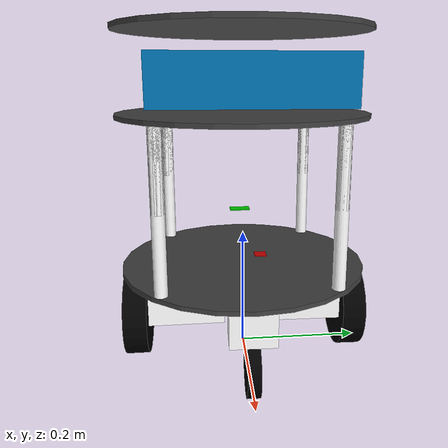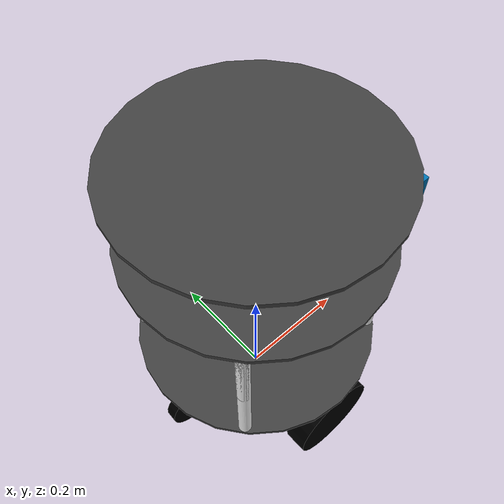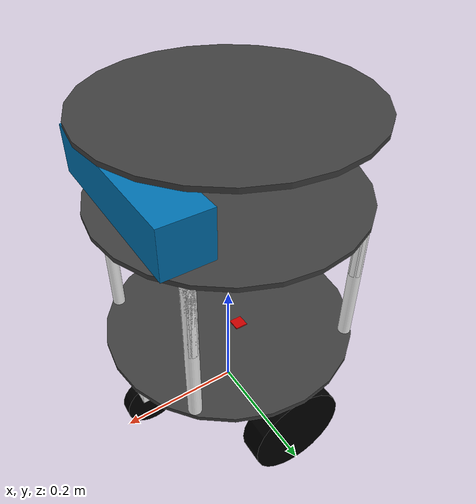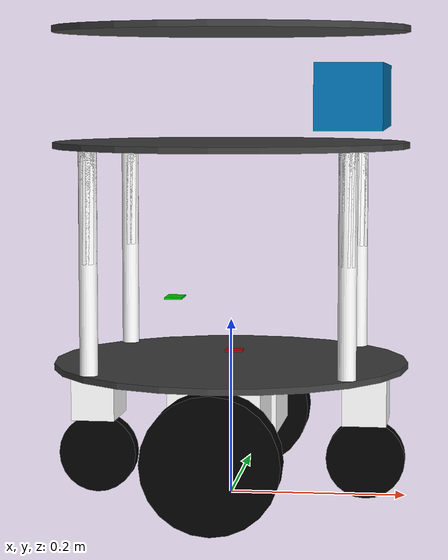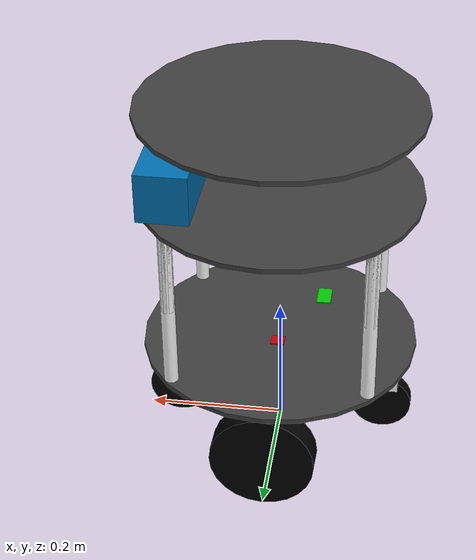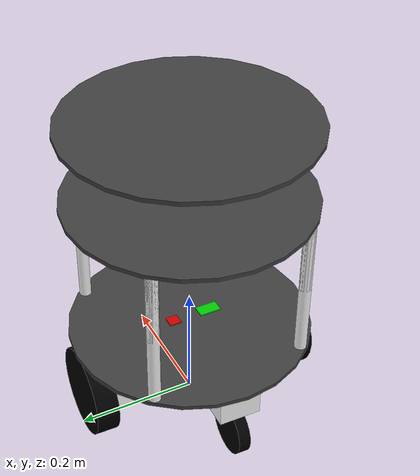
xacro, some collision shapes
<?xml version="1.0" ?>
<robot
	xmlns:xacro="http://www.ros.org/wiki/xacro"
	name="Gen2_Platform">

	<property name="M_PI" value="3.14159"/>
  <property name="SCALE" value="0.0254"/>
  <property name="base_x" value="0.33" />
  <property name="base_y" value="0.33" />

<!-- Material colors for reference -->
	<material name="Green">
		<color rgba="0.0 0.8 0.0 1.0"/>
	</material>
	<material name="Red">
		<color rgba="0.8 0.0 0.0 1.0"/>
	</material>
	<material name="White">
		<color rgba="1.0 1.0 1.0 1.0"/>
	</material>
	<material name="Blue">
		<color rgba="0.0 0.0 0.8 1.0"/>
	</material>
	<material name="Black">
		<color rgba="0.0 0.0 0.0 1.0"/>
	</material>
	<material name="Grey">
		<color rgba="0.25 0.25 0.25 1.0"/>
	</material>

<!-- base plate links and joints -->
	<link name="base_footprint">
	    <inertial>
		<mass value="0.0001" />
		<origin xyz="0 0 0" />
		<inertia ixx="0.0001" ixy="0.0" ixz="0.0" iyy="0.0001" iyz="0.0" izz="0.0001" />
	    </inertial>
	    <visual>
		<origin xyz="0 0 0" rpy="0 0 0" />
		<geometry>
		    <box size="0.001 0.001 0.001" />
		</geometry>
		<material name="White"/>
	    </visual>
	    <collision>
		<origin xyz="0 0 0.017" rpy="0 0 0" />
		<geometry>
		    <box size="0.001 0.001 0.001" />
		</geometry>
	    </collision>
	</link>

	<link name="base_link">
		<inertial>
			<mass value="1" />
			<origin xyz=" 0 0 0" />
			<inertia ixx="1.0" ixy="0.0" ixz="0.0" iyy="1.0" iyz="0.0" izz="1.0" />
		</inertial>

		<visual>
			<origin xyz=" 0 0 0" rpt=" 0 0 0" />
			<material name="Grey" />
			<geometry>
				<cylinder length="0.007" radius="0.2025" />
			</geometry>
		</visual>
	</link>

	<link name="base_middle_link">
		<inertial>
			<mass value="1" />
			<origin xyz=" 0 0 0" />
			<inertia ixx="1.0" ixy="0.0" ixz="0.0" iyy="1.0" iyz="0.0" izz="1.0" />
		</inertial>

		<visual>
			<origin xyz=" 0 0 0" rpt=" 0 0 0" />
			<material name="Grey" />
			<geometry>
				<cylinder length="0.007" radius="0.2025" />
			</geometry>
		</visual>
	</link>

		<link name="base_top_link">
		<inertial>
			<mass value="1" />
			<origin xyz=" 0 0 0" />
			<inertia ixx="1.0" ixy="0.0" ixz="0.0" iyy="1.0" iyz="0.0" izz="1.0" />
		</inertial>

		<visual>
			<origin xyz=" 0 0 0" rpt=" 0 0 0" />
			<material name="Grey" />
			<geometry>
				<cylinder length="0.007" radius="0.2025" />
			</geometry>
		</visual>
	</link>

	<joint name="base_footprint_joint" type="fixed">
		<origin xyz="0 0 0.15" rpy="0 0 0" />
		<parent link="base_footprint" />
		<child link="base_link" />
	</joint>

	<joint name="base_middle_joint" type="fixed">
		<origin xyz=" 0 0 0.25" rpy="0 0 0" />
		<parent link="base_link" />
		<child link="base_middle_link" />
	</joint>

	<joint name="base_top_joint" type="fixed">
		<origin xyz=" 0 0 0.13" rpy="0 0 0" />
		<parent link="base_middle_link" />
		<child link="base_top_link" />
	</joint>

<!-- front left bar link and joints -->

  <link name="middle_fl_link">
    <visual>
      <geometry>
        <cylinder length="0.25" radius="0.01" />
      </geometry>
      <material name="White" />
    </visual>
    <inertial>
      <mass value="0.000001" />
      <origin xyz="0 0 0" />
      <inertia ixx="0.0001" ixy="0.0" ixz="0.0"
        iyy="0.0001" iyz="0.0"
        izz="0.0001" />
    </inertial>
  </link>

  <link name="top_fl_link">
    <visual>
      <geometry>
        <cylinder length="0.125" radius="0.01" />
      </geometry>
      <material name="White" />
    </visual>
    <inertial>
      <mass value="0.000001" />
      <origin xyz="0 0 0" />
      <inertia ixx="0.0001" ixy="0.0" ixz="0.0"
        iyy="0.0001" iyz="0.0"
        izz="0.0001" />
    </inertial>
  </link>

<joint name="middle_fl_joint" type="fixed">
    <origin xyz="0.14 0.13 0.125" rpy="0 0 0" />
    <parent link="base_link" />
    <child link="middle_fl_link" />
  </joint>

<joint name="top_fl_joint" type="fixed">
    <origin xyz="0 0 0.0625" rpy="0 0 0" />
    <parent link="middle_fl_link" />
    <child link="top_fl_link" />
  </joint>

<!-- front right link and joints -->

  <link name="middle_fr_link">
    <visual>
      <geometry>
        <cylinder length="0.25" radius="0.01" />
      </geometry>
      <material name="White" />
    </visual>
    <inertial>
      <mass value="0.000001" />
      <origin xyz="0 0 0" />
      <inertia ixx="0.0001" ixy="0.0" ixz="0.0"
        iyy="0.0001" iyz="0.0"
        izz="0.0001" />
    </inertial>
  </link>

  <link name="top_fr_link">
    <visual>
      <geometry>
        <cylinder length="0.125" radius="0.01" />
      </geometry>
      <material name="White" />
    </visual>
    <inertial>
      <mass value="0.000001" />
      <origin xyz="0 0 0" />
      <inertia ixx="0.0001" ixy="0.0" ixz="0.0"
        iyy="0.0001" iyz="0.0"
        izz="0.0001" />
    </inertial>
  </link>

<joint name="middle_fr_joint" type="fixed">
    <origin xyz="0.14 -0.13 0.125" rpy="0 0 0" />
    <parent link="base_link" />
    <child link="middle_fr_link" />
  </joint>

<joint name="top_fr_joint" type="fixed">
    <origin xyz="0 0 0.0625" rpy="0 0 0" />
    <parent link="middle_fr_link" />
    <child link="top_fr_link" />
  </joint>

<!-- rear left bar links and joints -->

  <link name="middle_rl_link">
    <visual>
      <geometry>
        <cylinder length="0.25" radius="0.01" />
      </geometry>
      <material name="White" />
    </visual>
    <inertial>
      <mass value="0.000001" />
      <origin xyz="0 0 0" />
      <inertia ixx="0.0001" ixy="0.0" ixz="0.0"
        iyy="0.0001" iyz="0.0"
        izz="0.0001" />
    </inertial>
  </link>

  <link name="top_rl_link">
    <visual>
      <geometry>
        <cylinder length="0.125" radius="0.01" />
      </geometry>
      <material name="White" />
    </visual>
    <inertial>
      <mass value="0.000001" />
      <origin xyz="0 0 0" />
      <inertia ixx="0.0001" ixy="0.0" ixz="0.0"
        iyy="0.0001" iyz="0.0"
        izz="0.0001" />
    </inertial>
  </link>

<joint name="middle_rl_joint" type="fixed">
    <origin xyz="-0.14 0.13 0.125" rpy="0 0 0" />
    <parent link="base_link" />
    <child link="middle_rl_link" />
  </joint>

<joint name="top_rl_joint" type="fixed">
    <origin xyz="0 0 0.0625" rpy="0 0 0" />
    <parent link="middle_rl_link" />
    <child link="top_rl_link" />
  </joint>

<!-- rear right bar links and joints -->

  <link name="middle_rr_link">
    <visual>
      <geometry>
        <cylinder length="0.25" radius="0.01" />
      </geometry>
      <material name="White" />
    </visual>
    <inertial>
      <mass value="0.000001" />
      <origin xyz="0 0 0" />
      <inertia ixx="0.0001" ixy="0.0" ixz="0.0"
        iyy="0.0001" iyz="0.0"
        izz="0.0001" />
    </inertial>
  </link>

  <link name="top_rr_link">
    <visual>
      <geometry>
        <cylinder length="0.125" radius="0.01" />
      </geometry>
      <material name="White" />
    </visual>
    <inertial>
      <mass value="0.000001" />
      <origin xyz="0 0 0" />
      <inertia ixx="0.0001" ixy="0.0" ixz="0.0"
        iyy="0.0001" iyz="0.0"
        izz="0.0001" />
    </inertial>
  </link>

<joint name="middle_rr_joint" type="fixed">
    <origin xyz="-0.14 -0.13 0.125" rpy="0 0 0" />
    <parent link="base_link" />
    <child link="middle_rr_link" />
  </joint>

<joint name="top_rr_joint" type="fixed">
    <origin xyz="0 0 0.0625" rpy="0 0 0" />
    <parent link="middle_rr_link" />
    <child link="top_rr_link" />
  </joint>

<!-- motor links and joints -->

<link name="left_motor_link">
		<inertial>
			<mass value="1" />
			<origin xyz=" 0 0 0" />
			<inertia ixx="1.0" ixy="0.0" ixz="0.0" iyy="1.0" iyz="0.0" izz="1.0" />
		</inertial>

		<visual>
			<origin xyz=" 0 0 0" rpt=" 0 0 0" />
			<material name="White" />
			<geometry>
				<box size="0.125 0.10 0.09" />
			</geometry>
		</visual>
	</link>

<joint name="left_motor_joint" type="fixed">
    <origin xyz=" 0 0.0975 -0.045" rpy="0 0 1.55" />
    <parent link="base_link" />
    <child link="left_motor_link" />
  </joint>

<link name="right_motor_link">
		<inertial>
			<mass value="1" />
			<origin xyz=" 0 0 0" />
			<inertia ixx="1.0" ixy="0.0" ixz="0.0" iyy="1.0" iyz="0.0" izz="1.0" />
		</inertial>

		<visual>
			<origin xyz=" 0 0 0" rpt=" 0 0 0" />
			<material name="White" />
			<geometry>
				<box size="0.125 0.10 0.09" />
			</geometry>
		</visual>
	</link>

<joint name="right_motor_joint" type="fixed">
    <origin xyz="0 -0.0975 -0.045" rpy="0 0 1.575" />
    <parent link="base_link" />
    <child link="right_motor_link" />
  </joint>

<!-- wheel links and joints -->

<link name="left_wheel_link">
		<inertial>
			<mass value="1" />
			<origin xyz=" 0 0 0" />
			<inertia ixx="1.0" ixy="0.0" ixz="0.0" iyy="1.0" iyz="0.0" izz="1.0" />
		</inertial>

		<visual>
			<origin xyz=" 0 0 0" rpt=" 0 0 0" />
			<material name="Black" />
			<geometry>
				 <cylinder length="0.038" radius="0.075" />
			</geometry>
		</visual>
	</link>

<joint name="left_wheel_joint" type="fixed">
    <origin xyz="0.0825 0 -0.035" rpy="0 1.575 0" />

    <parent link="left_motor_link" />
    <child link="left_wheel_link" />
  </joint>

<link name="right_wheel_link">
		<inertial>
			<mass value="1" />
			<origin xyz=" 0 0 0" />
			<inertia ixx="1.0" ixy="0.0" ixz="0.0" iyy="1.0" iyz="0.0" izz="1.0" />
		</inertial>

		<visual>
			<origin xyz=" 0 0 0" rpt=" 0 0 0" />
			<material name="Black" />
			<geometry>
				 <cylinder length="0.038" radius="0.075" />
			</geometry>
		</visual>
	</link>

<joint name="right_wheel_joint" type="fixed">
    <origin xyz="-0.0825 0 -0.035" rpy="0 1.575 0" />

    <parent link="right_motor_link" />
    <child link="right_wheel_link" />

  </joint>

<!-- castor links and joints -->

<joint name="front_castor_base_joint" type="fixed">
    <origin xyz=" 0.155 0 -0.0325" rpy="0 0 1.55" />
    <parent link="base_link" />
    <child link="front_castor_base_link" />
  </joint>

<link name="front_castor_base_link">
		<inertial>
			<mass value="1" />
			<origin xyz=" 0 0 0" />
			<inertia ixx="1.0" ixy="0.0" ixz="0.0" iyy="1.0" iyz="0.0" izz="1.0" />
		</inertial>

		<visual>
			<origin xyz=" 0 0 0" rpt=" 0 0 0" />
			<material name="White" />
			<geometry>
				<box size="0.07 0.05 0.065" />
			</geometry>
		</visual>
	</link>

<joint name="rear_castor_base_joint" type="fixed">
    <origin xyz=" -0.155 0 -0.0325" rpy="0 0 1.55" />
    <parent link="base_link" />
    <child link="rear_castor_base_link" />
  </joint>

<link name="rear_castor_base_link">
		<inertial>
			<mass value="1" />
			<origin xyz=" 0 0 0" />
			<inertia ixx="1.0" ixy="0.0" ixz="0.0" iyy="1.0" iyz="0.0" izz="1.0" />
		</inertial>

		<visual>
			<origin xyz=" 0 0 0" rpt=" 0 0 0" />
			<material name="White" />
			<geometry>
				<box size="0.07 0.05 0.065" />
			</geometry>
		</visual>
	</link>

<joint name="front_castor_joint" type="fixed">
    <origin xyz="0 0 -0.075" rpy="0 1.575 0" />

    <parent link="front_castor_base_link" />
    <child link="front_castor_link" />

  </joint>

<link name="front_castor_link">
		<inertial>
			<mass value="1" />
			<origin xyz=" 0 0 0" />
			<inertia ixx="1.0" ixy="0.0" ixz="0.0" iyy="1.0" iyz="0.0" izz="1.0" />
		</inertial>

		<visual>
			<origin xyz=" 0 0 0" rpt=" 0 0 0" />
			<material name="Black" />
			<geometry>
				 <cylinder length="0.02" radius="0.045" />
			</geometry>
		</visual>
	</link>

<joint name="rear_castor_joint" type="fixed">
    <origin xyz="0 0 -0.075" rpy="0 1.575 0" />

    <parent link="rear_castor_base_link" />
    <child link="rear_castor_link" />

  </joint>

<link name="rear_castor_link">
		<inertial>
			<mass value="1" />
			<origin xyz=" 0 0 0" />
			<inertia ixx="1.0" ixy="0.0" ixz="0.0" iyy="1.0" iyz="0.0" izz="1.0" />
		</inertial>

		<visual>
			<origin xyz=" 0 0 0" rpt=" 0 0 0" />
			<material name="Black" />
			<geometry>
				 <cylinder length="0.02" radius="0.045" />
			</geometry>
		</visual>
	</link>

<!-- kinnect links and joints -->

	<joint name="base_kinect_joint" type="fixed">
  	        <origin xyz="0.14 0 0.055" rpy="0 0 0" />
 	        <parent link="base_middle_link" />
                <child link="kinect_link" />
       </joint>

       <link name="kinect_link">
         <inertial>
          <mass value="0.00001" />
          <origin xyz="0 0 0" />
         <inertia ixx="1.0" ixy="0.0" ixz="0.0"
                            iyy="1.0" iyz="0.0"
                            izz="1.0" />
         </inertial>

        <visual>
         <origin xyz=" 0 0 0 " rpy="0 0 0" />
          <geometry>
          <mesh filename="package://gen2_description/meshes/kinect.dae"/>
          </geometry>
        </visual>

        <collision>
         <origin xyz="0.0 0.0 0.0" rpy="0 0 0" />
         <geometry>
          <box size="0.0730 .2760 0.0720"/>
         </geometry>
        </collision>

         </link>

  <joint name="kinect_depth_joint" type="fixed">
    <origin xyz="0 0.018 0" rpy="0 0 0" />
    <parent link="kinect_link" />
    <child link="kinect_depth_frame" />
  </joint>

  <link name="kinect_depth_frame">
    <inertial>
      <mass value="0.000001" />
      <origin xyz="0 0 0" />
      <inertia ixx="0.0001" ixy="0.0" ixz="0.0"
        iyy="0.0001" iyz="0.0"
        izz="0.0001" />
    </inertial>
  </link>

  <joint name="kinect_depth_optical_joint" type="fixed">
    <origin xyz="0 0 0" rpy="${-M_PI/2} 0 ${-M_PI/2}" />
    <parent link="kinect_depth_frame" />
    <child link="kinect_depth_optical_frame" />
  </joint>

  <link name="kinect_depth_optical_frame">
    <inertial>
      <mass value="0.000001" />
      <origin xyz="0 0 0" />
      <inertia ixx="0.0001" ixy="0.0" ixz="0.0"
        iyy="0.0001" iyz="0.0"
        izz="0.0001" />
    </inertial>
  </link>

  <joint name="kinect_rgb_joint" type="fixed">
    <origin xyz="0 -0.005 0" rpy="0 0 0" />
    <parent link="kinect_link" />
    <child link="kinect_rgb_frame" />
  </joint>

  <link name="kinect_rgb_frame">
    <inertial>
      <mass value="0.000001" />
      <origin xyz="0 0 0" />
      <inertia ixx="0.0001" ixy="0.0" ixz="0.0"
        iyy="0.0001" iyz="0.0"
        izz="0.0001" />
    </inertial>
  </link>

  <joint name="kinect_rgb_optical_joint" type="fixed">
    <origin xyz="0 0 0" rpy="${-M_PI/2} 0 ${-M_PI/2}" />
    <parent link="kinect_rgb_frame" />
    <child link="kinect_rgb_optical_frame" />
  </joint>

  <link name="kinect_rgb_optical_frame">
    <inertial>
      <mass value="0.000001" />
      <origin xyz="0 0 0" />
      <inertia ixx="0.0001" ixy="0.0" ixz="0.0"
        iyy="0.0001" iyz="0.0"
        izz="0.0001" />
    </inertial>
  </link>

<!-- Gyro link and joint -->

<joint name="gyro_joint" type="fixed">
    <origin xyz="0 0.03 0.01" rpy="0 0 0" />
    <parent link="base_link" />
    <child link="gyro_link" />
  </joint>

  <link name="gyro_link">
    <visual>
      <geometry>
        <box size="0.02 0.02 0.002" />
      </geometry>
      <material name="Red" />
    </visual>
    <inertial>
      <mass value="0.000001" />
      <origin xyz="0 0 0" />
      <inertia ixx="0.0001" ixy="0.0" ixz="0.0"
        iyy="0.0001" iyz="0.0"
        izz="0.0001" />
    </inertial>
  </link>

<!--laser link and joint -->

 <joint name="laser_joint" type="fixed">
    <origin xyz="-0.065 0 0.075" rpy="0 0 0" />
    <parent link="base_link" />
    <child link="laser" />
  </joint>

  <link name="laser">
    <visual>
      <geometry>
        <box size="0.02 0.035 0.002" />
      </geometry>
      <material name="Green" />
    </visual>
    <inertial>
      <mass value="0.000001" />
      <origin xyz="0 0 0" />
      <inertia ixx="0.0001" ixy="0.0" ixz="0.0"
        iyy="0.0001" iyz="0.0"
        izz="0.0001" />
    </inertial>
  </link>

</robot>
